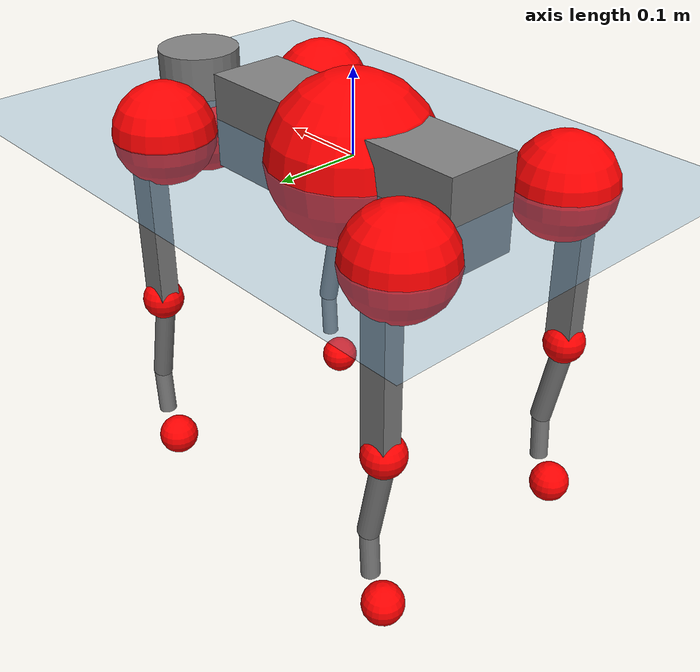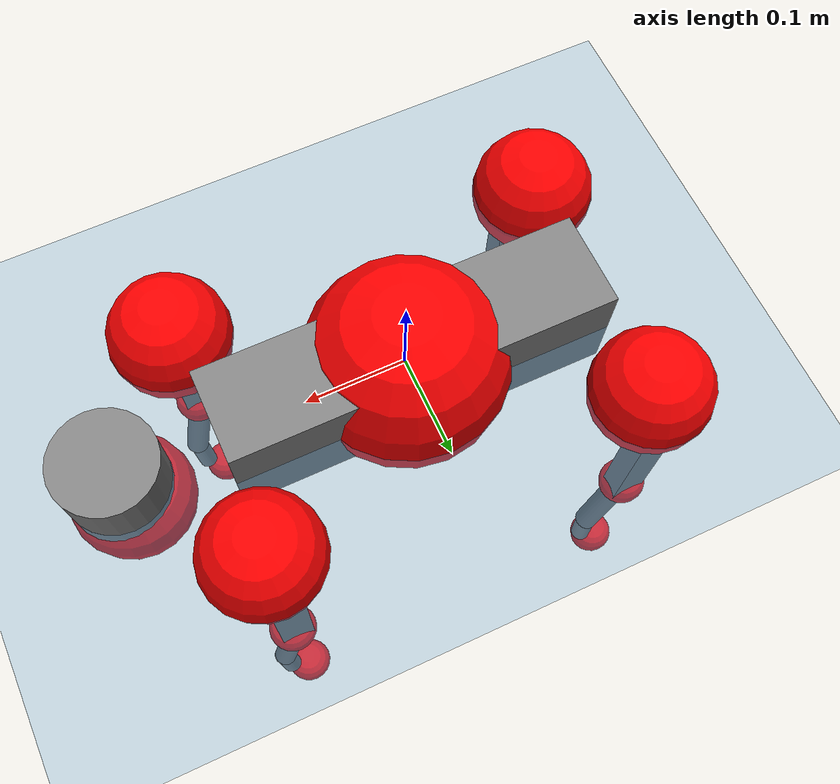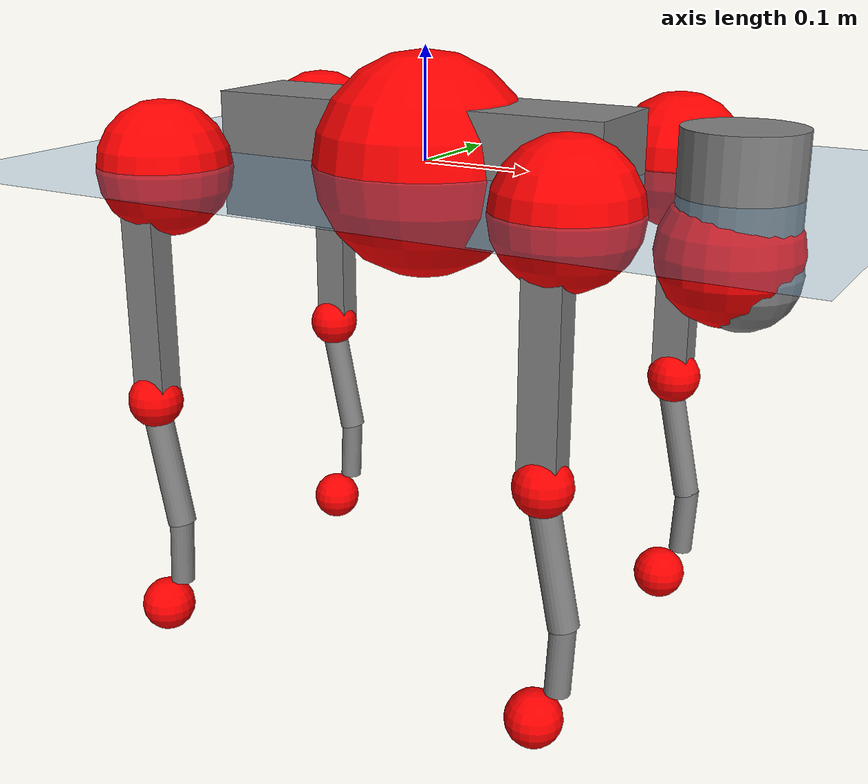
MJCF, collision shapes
<mujoco model="go2">
  <compiler angle="radian" assetdir="assets" balanceinertia="true" inertiafromgeom="false"/>

  <option timestep="0.005" density="1.2" viscosity="2e-05"/>

  <size nkey="1"/>

  <visual>
    <quality shadowsize="8192"/>
    <map shadowclip="0.5"/>
  </visual>

  <default>
    <default class="/">
      <geom contype="0" conaffinity="0" group="1" solref="-1000 -80"/>
      <site size="0.01 0.005 0.005" group="5"/>
      <general forcelimited="true" biastype="affine" gainprm="20" biasprm="0 -20 -0.5"/>
      <default class="go2">
        <joint armature="0.01" damping="0.01" frictionloss="0.2"/>
        <geom condim="1" margin="0.001"/>
        <default class="visual">
          <geom type="mesh" group="2"/>
        </default>
        <default class="collision">
          <geom group="3"/>
          <default class="foot">
            <geom size="0.022 0 0" condim="6" priority="1" friction="0.8 0.02 0.01" solimp="0.015 1 0.022"/>
          </default>
        </default>
        <default class="reward_collision_sphere">
          <geom group="5" rgba="1 0 0 1"/>
        </default>
      </default>
    </default>
  </default>

  <asset>
    <texture type="skybox" colorspace="auto" name="//unnamed_texture_0" builtin="gradient" rgb1="0.95 0.95 0.95" rgb2="0.95 0.95 0.95" width="100" height="600"/>
    <texture type="2d" colorspace="auto" name="texplane" builtin="checker" rgb1="0.345 0.575 0.748" rgb2="0.345 0.575 0.748" markrgb="1 1 1" width="512" height="512"/>
    <material name="MatPlane" class="/" texture="texplane" texuniform="true" texrepeat="2 2" specular="0.9"/>
    <material name="metal" class="/" rgba="0.9 0.95 0.95 1"/>
    <material name="black" class="/" rgba="0 0 0 1"/>
    <material name="white" class="/"/>
    <material name="gray" class="/" rgba="0.671705 0.692426 0.77427 1"/>
    <mesh name="base_0" class="/" file="base_0.obj"/>
    <mesh name="base_1" class="/" file="base_1.obj"/>
    <mesh name="base_2" class="/" file="base_2.obj"/>
    <mesh name="base_3" class="/" file="base_3.obj"/>
    <mesh name="base_4" class="/" file="base_4.obj"/>
    <mesh name="hip_0" class="/" file="hip_0.obj"/>
    <mesh name="hip_1" class="/" file="hip_1.obj"/>
    <mesh name="thigh_0" class="/" file="thigh_0.obj"/>
    <mesh name="thigh_1" class="/" file="thigh_1.obj"/>
    <mesh name="thigh_mirror_0" class="/" file="thigh_mirror_0.obj"/>
    <mesh name="thigh_mirror_1" class="/" file="thigh_mirror_1.obj"/>
    <mesh name="calf_0" class="/" file="calf_0.obj"/>
    <mesh name="calf_1" class="/" file="calf_1.obj"/>
    <mesh name="calf_mirror_0" class="/" file="calf_mirror_0.obj"/>
    <mesh name="calf_mirror_1" class="/" file="calf_mirror_1.obj"/>
    <mesh name="foot" class="/" file="foot.obj"/>
  </asset>

  <worldbody>
    <geom name="floor" class="/" size="100 100 0.125" type="plane" group="0" material="MatPlane"/>
    <light name="toplight_shadow" class="/" pos="0 0 5" dir="0.0990148 0.0990148 -0.990148" type="directional" ambient="0.04 0.04 0.04" diffuse="0.55 0.55 0.55" specular="0.12 0.12 0.12"/>
    <light name="toplight_fill" class="/" pos="0 0 5" dir="0.0990148 0.0990148 -0.990148" type="directional" castshadow="false" ambient="0.04 0.04 0.04" diffuse="0.3 0.3 0.3" specular="0.08 0.08 0.08"/>
    <body name="trunk" childclass="go2" pos="-0.00104831 -9.4869e-06 -0.00282745" quat="1 -4.96105e-05 0.000449653 0.000179205">
      <inertial pos="0.0182485 -0.0023873 -0.00318792" quat="0.00200641 0.716005 0.0045895 0.698077" mass="7.02597" diaginertia="0.112796 0.105211 0.0244771"/>
      <joint name="//unnamed_joint_0" type="free" armature="0" damping="0" frictionloss="0"/>
      <geom name="//unnamed_geom_1" class="visual" material="black" mesh="base_0"/>
      <geom name="//unnamed_geom_2" class="visual" material="black" mesh="base_1"/>
      <geom name="//unnamed_geom_3" class="visual" material="black" mesh="base_2"/>
      <geom name="//unnamed_geom_4" class="visual" material="white" mesh="base_3"/>
      <geom name="//unnamed_geom_5" class="visual" material="gray" mesh="base_4"/>
      <geom name="trunk_1" class="collision" size="0.188064 0.0467412 0.0569892" type="box"/>
      <geom name="trunk_2" class="collision" size="0.0499906 0.0449915" pos="0.28472 0 0.00991812" type="cylinder"/>
      <geom name="trunk_3" class="collision" size="0.0469911" pos="0.292712 0 -0.0595087"/>
      <geom name="//unnamed_geom_9" class="reward_collision_sphere" size="0.0999811"/>
      <geom name="//unnamed_geom_10" class="reward_collision_sphere" size="0.0599887" pos="0.279725 0 -0.0446315"/>
      <site name="imu" pos="-0.031418 0.00379585 0.0530205" size="0.00999811"/>
      <camera name="track" pos="0 -2.01721 0" quat="0.707107 0.707107 0 0" mode="trackcom"/>
      <camera name="ego_camera" pos="0.311694 0 0.0446315" quat="-0.5 -0.5 0.5 0.5"/>
      <body name="FL_hip" pos="0.191915 0.0462593 0.00338263" quat="0.999999 0.000826945 -0.000721712 0.000345327">
        <inertial pos="-0.00329835 -4.72564e-05 0.000936852" quat="0.503093 0.495274 0.512579 0.488736" mass="0.66602" diaginertia="0.000866631 0.000624747 0.000472096"/>
        <joint name="FL_hip_joint" pos="0 0 0" axis="0.999927 -0.0117738 -0.00277816" range="-1.02617 1.10421" armature="0.0108342" damping="0.0114182" frictionloss="0.203182"/>
        <geom name="//unnamed_geom_11" class="visual" material="metal" mesh="hip_0"/>
        <geom name="//unnamed_geom_12" class="visual" material="gray" mesh="hip_1"/>
        <geom name="//unnamed_geom_13" class="collision" size="0.0459913 0.0199962" pos="0 0.0806883 0" quat="0.707107 0.707107 0 0" type="cylinder"/>
        <geom name="//unnamed_geom_14" class="reward_collision_sphere" size="0.0599887" pos="0 0.0706022 0"/>
        <body name="FL_thigh" pos="-0.00167519 0.0969289 0.000902534" quat="1 0.000147617 0.000146967 0.000258394">
          <inertial pos="-0.00172652 -0.0224994 -0.030352" quat="0.830442 0.0807306 -0.0194326 0.550882" mass="1.17715" diaginertia="0.00570353 0.00602142 0.000836768"/>
          <joint name="FL_thigh_joint" pos="0 0 0" axis="0.00238732 0.999997 -0.000311265" stiffness="0.00203608" range="-1.58048 3.50006" armature="0.00978637" damping="0.00311085" frictionloss="0.177971"/>
          <geom name="//unnamed_geom_15" class="visual" material="metal" mesh="thigh_0"/>
          <geom name="//unnamed_geom_16" class="visual" material="gray" mesh="thigh_1"/>
          <geom name="//unnamed_geom_17" class="collision" size="0.10648 0.0122477 0.0169968" pos="0 0 -0.105628" quat="0.707107 0 0.707107 0" type="box"/>
          <body name="FL_calf" pos="0.00249937 -0.00192564 -0.212748" quat="0.999999 0.000988076 0.000975153 0.000214015">
            <inertial pos="0.00583957 -0.000979879 -0.140545" quat="0.712173 0.000570206 -0.0023905 0.702" mass="0.235134" diaginertia="0.00143703 0.00152168 4.92075e-05"/>
            <joint name="FL_calf_joint" pos="0 0 0" axis="0.0157921 0.999673 -0.0201084" range="-2.78137 -0.798791" armature="0.0112703" damping="0" frictionloss="0.228379"/>
            <geom name="//unnamed_geom_18" class="visual" material="gray" mesh="calf_0"/>
            <geom name="//unnamed_geom_19" class="visual" material="black" mesh="calf_1"/>
            <geom name="FL_calf0" class="collision" size="0.0119977 0.0599887" pos="0.00799215 0 -0.0595087" quat="0.994493 0 -0.104807 0" type="cylinder"/>
            <geom name="//unnamed_geom_21" class="collision" size="0.0109979 0.0324939" pos="0.0199804 0 -0.146788" quat="0.999688 0 0.0249974 0" type="cylinder"/>
            <geom name="//unnamed_geom_22" class="visual" pos="0 0 -0.211256" quat="1 0 0 0" material="black" mesh="foot"/>
            <geom name="FL_foot" class="foot" size="0.0157125" pos="-0.00199804 0 -0.211256"/>
            <geom name="//unnamed_geom_24" class="reward_collision_sphere" size="0.0249953"/>
            <geom name="//unnamed_geom_25" class="reward_collision_sphere" size="0.0249953" pos="-0.00199804 0 -0.211256"/>
            <site name="FL_foot" class="foot" pos="-0.00199804 0 -0.211256" size="0.00999811"/>
          </body>
        </body>
      </body>
      <body name="FR_hip" pos="0.190923 -0.0470992 -0.000369088" quat="1 4.40667e-05 -0.000123099 -2.00229e-05">
        <inertial pos="-0.00303396 -0.000891102 -0.00141415" quat="0.49859 0.505644 0.49839 0.497332" mass="0.696831" diaginertia="0.00088523 0.000666015 0.000474975"/>
        <joint name="FR_hip_joint" pos="0 0 0" axis="0.999956 0.000583384 -0.00940584" range="-1.09098 1.03601" armature="0.00892058" damping="0.00292215" frictionloss="0.178412"/>
        <geom name="//unnamed_geom_26" class="visual" pos="0 1.46283e-10 6.27437e-09" quat="4.63268e-05 1 0 0" material="metal" mesh="hip_0"/>
        <geom name="//unnamed_geom_27" class="visual" pos="0 2.37142e-10 -1.55189e-08" quat="4.63268e-05 1 0 0" material="gray" mesh="hip_1"/>
        <geom name="//unnamed_geom_28" class="collision" size="0.0459913 0.0199962" pos="0 -0.0806883 0" quat="0.707107 0.707107 0 0" type="cylinder"/>
        <geom name="//unnamed_geom_29" class="reward_collision_sphere" size="0.0599887" pos="0 -0.0706022 0"/>
        <body name="FR_thigh" pos="-0.00197307 -0.0943102 -0.00200766" quat="1 5.74501e-05 2.06526e-05 2.19964e-05">
          <inertial pos="-0.00341503 0.0219112 -0.0312691" quat="0.54756 -0.0300551 0.0886946 0.831509" mass="1.08815" diaginertia="0.00564537 0.00609886 0.000838999"/>
          <joint name="FR_thigh_joint" pos="0 0 0" axis="0.00910446 -0.999953 0.00327873" range="-3.46563 1.62563" armature="0.0102278" damping="0" frictionloss="0.20574"/>
          <geom name="//unnamed_geom_30" class="visual" material="metal" mesh="thigh_mirror_0"/>
          <geom name="//unnamed_geom_31" class="visual" material="gray" mesh="thigh_mirror_1"/>
          <geom name="//unnamed_geom_32" class="collision" size="0.10648 0.0122477 0.0169968" pos="0 0 -0.105628" quat="0.707107 0 0.707107 0" type="box"/>
          <body name="FR_calf" pos="0.00193831 -0.00160466 -0.208976" quat="1 0.000374726 5.85288e-05 9.89196e-05">
            <inertial pos="0.00568758 0.0015807 -0.138439" quat="0.702686 -0.0173623 -0.00330188 0.711281" mass="0.243889" diaginertia="0.00146271 0.0014827 5.05966e-05"/>
            <joint name="FR_calf_joint" pos="0 0 0" axis="-0.00891448 -0.999958 -0.00234149" range="0.781402 2.77863" armature="0.00936288" damping="0.00602997" frictionloss="0.184996"/>
            <geom name="//unnamed_geom_33" class="visual" material="gray" mesh="calf_mirror_0"/>
            <geom name="//unnamed_geom_34" class="visual" material="black" mesh="calf_mirror_1"/>
            <geom name="FR_calf0" class="collision" size="0.0129975 0.0599887" pos="0.00999018 0 -0.0595087" quat="0.995004 0 -0.0998334 0" type="cylinder"/>
            <geom name="//unnamed_geom_36" class="collision" size="0.0109979 0.0324939" pos="0.0199804 0 -0.146788" quat="0.999688 0 0.0249974 0" type="cylinder"/>
            <geom name="//unnamed_geom_37" class="visual" pos="0 0 -0.211256" quat="1 0 0 0" material="black" mesh="foot"/>
            <geom name="FR_foot" class="foot" size="0.0220774" pos="-0.00199804 0 -0.211256"/>
            <geom name="//unnamed_geom_39" class="reward_collision_sphere" size="0.0249953"/>
            <geom name="//unnamed_geom_40" class="reward_collision_sphere" size="0.0249953" pos="-0.00199804 0 -0.211256"/>
            <site name="FR_foot" class="foot" pos="-0.00199804 0 -0.211256" size="0.00999811"/>
          </body>
        </body>
      </body>
      <body name="RL_hip" pos="-0.194459 0.0493466 -0.000520648" quat="1 -0.000538165 0.000488262 -1.8513e-06">
        <inertial pos="0.00758207 0.0041464 -0.00128093" quat="0.508464 0.507809 0.493266 0.490188" mass="0.679889" diaginertia="0.000836891 0.00061427 0.000434471"/>
        <joint name="RL_hip_joint" pos="0 0 0" axis="-1 0.000742924 4.58644e-05" range="-1.01297 1.03452" armature="0.00884254" damping="0" frictionloss="0.2065"/>
        <geom name="//unnamed_geom_41" class="visual" pos="-6.27799e-11 0 -1.23063e-08" quat="4.63268e-05 0 1 0" material="metal" mesh="hip_0"/>
        <geom name="//unnamed_geom_42" class="visual" pos="-1.01774e-10 0 -1.09139e-08" quat="4.63268e-05 0 1 0" material="gray" mesh="hip_1"/>
        <geom name="//unnamed_geom_43" class="collision" size="0.0459913 0.0199962" pos="0 0.0806883 0" quat="0.707107 0.707107 0 0" type="cylinder"/>
        <geom name="//unnamed_geom_44" class="reward_collision_sphere" size="0.0599887" pos="0 0.0706022 0"/>
        <body name="RL_thigh" pos="-0.00281382 0.0949927 -0.00131771" quat="1 -5.09993e-07 4.45264e-07 2.01315e-07">
          <inertial pos="-0.00389346 -0.0196922 -0.0317992" quat="0.831272 0.0845487 -0.024134 0.548867" mass="1.15163" diaginertia="0.00595606 0.00589762 0.000857164"/>
          <joint name="RL_thigh_joint" pos="0 0 0" axis="0.00111389 0.999985 -0.00532085" stiffness="0.0140371" range="-0.521882 4.55906" armature="0.00871449" damping="0" frictionloss="0.216355"/>
          <geom name="//unnamed_geom_45" class="visual" material="metal" mesh="thigh_0"/>
          <geom name="//unnamed_geom_46" class="visual" material="gray" mesh="thigh_1"/>
          <geom name="//unnamed_geom_47" class="collision" size="0.10648 0.0122477 0.0169968" pos="0 0 -0.105628" quat="0.707107 0 0.707107 0" type="box"/>
          <body name="RL_calf" pos="-0.00267376 -0.00268901 -0.213428" quat="1 -0.000259795 -0.000427549 0.000654253">
            <inertial pos="0.00606789 -0.000844824 -0.139273" quat="0.710987 0.00101158 -0.00122417 0.703203" mass="0.242484" diaginertia="0.00147422 0.00152035 5.06168e-05"/>
            <joint name="RL_calf_joint" pos="0 0 0" axis="0.00439743 0.999978 0.00502431" range="-2.72868 -0.841635" armature="0.00875796" damping="0.00521456" frictionloss="0.228534"/>
            <geom name="//unnamed_geom_48" class="visual" material="gray" mesh="calf_0"/>
            <geom name="//unnamed_geom_49" class="visual" material="black" mesh="calf_1"/>
            <geom name="RL_calf0" class="collision" size="0.0129975 0.0599887" pos="0.00999018 0 -0.0595087" quat="0.995004 0 -0.0998334 0" type="cylinder"/>
            <geom name="//unnamed_geom_51" class="collision" size="0.0109979 0.0324939" pos="0.0199804 0 -0.146788" quat="0.999688 0 0.0249974 0" type="cylinder"/>
            <geom name="//unnamed_geom_52" class="visual" pos="0 0 -0.211256" quat="1 0 0 0" material="black" mesh="foot"/>
            <geom name="RL_foot" class="foot" size="0.0182777" pos="-0.00199804 0 -0.211256"/>
            <geom name="//unnamed_geom_54" class="reward_collision_sphere" size="0.0249953"/>
            <geom name="//unnamed_geom_55" class="reward_collision_sphere" size="0.0249953" pos="-0.00199804 0 -0.211256"/>
            <site name="RL_foot" class="foot" pos="-0.00199804 0 -0.211256" size="0.00999811"/>
          </body>
        </body>
      </body>
      <body name="RR_hip" pos="-0.194566 -0.0494007 -0.00246456" quat="0.999999 -0.0013269 -0.000125637 -0.000164274">
        <inertial pos="0.00350773 -0.00201154 0.00222241" quat="0.49798 0.496813 0.496313 0.508788" mass="0.656963" diaginertia="0.000857517 0.000601713 0.000437857"/>
        <joint name="RR_hip_joint" pos="0 0 0" axis="-0.999998 0.000109674 -0.00204183" range="-1.09443 1.07121" armature="0.0097548" damping="0.000963722" frictionloss="0.204508"/>
        <geom name="//unnamed_geom_56" class="visual" pos="6.31116e-11 1.46283e-10 -1.85807e-08" quat="2.14617e-09 4.63268e-05 4.63268e-05 -1" material="metal" mesh="hip_0"/>
        <geom name="//unnamed_geom_57" class="visual" pos="1.00953e-10 2.37142e-10 4.60498e-09" quat="2.14617e-09 4.63268e-05 4.63268e-05 -1" material="gray" mesh="hip_1"/>
        <geom name="//unnamed_geom_58" class="collision" size="0.0459913 0.0199962" pos="0 -0.0806883 0" quat="0.707107 0.707107 0 0" type="cylinder"/>
        <geom name="//unnamed_geom_59" class="reward_collision_sphere" size="0.0599887" pos="0 -0.0706022 0"/>
        <body name="RR_thigh" pos="-0.00136556 -0.0991995 0.00108441" quat="1 0.000415005 0.000192815 -0.000331594">
          <inertial pos="-0.000827883 0.0224822 -0.0327652" quat="0.550966 -0.0198998 0.0845667 0.829993" mass="1.11878" diaginertia="0.00568294 0.00599032 0.000835934"/>
          <joint name="RR_thigh_joint" pos="0 0 0" axis="-0.0142656 -0.999865 -0.00819502" stiffness="0.000880727" range="-4.5517 0.531143" armature="0.00899953" damping="0.00346244" frictionloss="0.205249"/>
          <geom name="//unnamed_geom_60" class="visual" material="metal" mesh="thigh_mirror_0"/>
          <geom name="//unnamed_geom_61" class="visual" material="gray" mesh="thigh_mirror_1"/>
          <geom name="//unnamed_geom_62" class="collision" size="0.10648 0.0122477 0.0169968" pos="0 0 -0.105628" quat="0.707107 0 0.707107 0" type="box"/>
          <body name="RR_calf" pos="-0.00162664 -0.00119545 -0.210775" quat="0.999999 -0.00045619 0.000725816 -0.000804531">
            <inertial pos="0.0041146 0.000669236 -0.141201" quat="0.711511 -0.0030087 0.00585065 0.702644" mass="0.235306" diaginertia="0.00141384 0.00155515 4.99326e-05"/>
            <joint name="RR_calf_joint" pos="0 0 0" axis="0.00111319 -0.99999 0.00440411" stiffness="0.0107054" range="0.841989 2.70394" armature="0.00928475" damping="0.0220389" frictionloss="0.199828"/>
            <geom name="//unnamed_geom_63" class="visual" material="gray" mesh="calf_mirror_0"/>
            <geom name="//unnamed_geom_64" class="visual" material="black" mesh="calf_mirror_1"/>
            <geom name="RR_calf0" class="collision" size="0.0129975 0.0599887" pos="0.00999018 0 -0.0595087" quat="0.995004 0 -0.0998334 0" type="cylinder"/>
            <geom name="//unnamed_geom_66" class="collision" size="0.0109979 0.0324939" pos="0.0199804 0 -0.146788" quat="0.999688 0 0.0249974 0" type="cylinder"/>
            <geom name="//unnamed_geom_67" class="visual" pos="0 0 -0.211256" quat="1 0 0 0" material="black" mesh="foot"/>
            <geom name="RR_foot" class="foot" size="0.0197077" pos="-0.00199804 0 -0.211256"/>
            <geom name="//unnamed_geom_69" class="reward_collision_sphere" size="0.0249953"/>
            <geom name="//unnamed_geom_70" class="reward_collision_sphere" size="0.0249953" pos="-0.00199804 0 -0.211256"/>
            <site name="RR_foot" class="foot" pos="-0.00199804 0 -0.211256" size="0.00999811"/>
          </body>
        </body>
      </body>
    </body>
  </worldbody>

  <contact>
    <pair class="/" geom1="floor" geom2="FL_foot" name="//unnamed_contact_0"/>
    <pair class="/" geom1="floor" geom2="FR_foot" name="//unnamed_contact_1"/>
    <pair class="/" geom1="floor" geom2="RL_foot" name="//unnamed_contact_2"/>
    <pair class="/" geom1="floor" geom2="RR_foot" name="//unnamed_contact_3"/>
  </contact>

  <actuator>
    <general name="FL_hip" class="/" joint="FL_hip_joint" forcerange="-24.1152 24.1152" gainprm="20.2059" biasprm="0 -20.2059 -0.488787"/>
    <general name="FL_thigh" class="/" joint="FL_thigh_joint" forcerange="-21.2287 21.2287" gainprm="20.2059" biasprm="0 -20.2059 -0.488787"/>
    <general name="FL_calf" class="/" joint="FL_calf_joint" forcerange="-44.3264 44.3264" gainprm="20.2059" biasprm="0 -20.2059 -0.488787"/>
    <general name="FR_hip" class="/" joint="FR_hip_joint" forcerange="-21.1401 21.1401" gainprm="20.2059" biasprm="0 -20.2059 -0.488787"/>
    <general name="FR_thigh" class="/" joint="FR_thigh_joint" forcerange="-25.7504 25.7504" gainprm="20.2059" biasprm="0 -20.2059 -0.488787"/>
    <general name="FR_calf" class="/" joint="FR_calf_joint" forcerange="-41.2813 41.2813" gainprm="20.2059" biasprm="0 -20.2059 -0.488787"/>
    <general name="RL_hip" class="/" joint="RL_hip_joint" forcerange="-23.6127 23.6127" gainprm="20.2059" biasprm="0 -20.2059 -0.488787"/>
    <general name="RL_thigh" class="/" joint="RL_thigh_joint" forcerange="-21.8195 21.8195" gainprm="20.2059" biasprm="0 -20.2059 -0.488787"/>
    <general name="RL_calf" class="/" joint="RL_calf_joint" forcerange="-44.7821 44.7821" gainprm="20.2059" biasprm="0 -20.2059 -0.488787"/>
    <general name="RR_hip" class="/" joint="RR_hip_joint" forcerange="-22.351 22.351" gainprm="20.2059" biasprm="0 -20.2059 -0.488787"/>
    <general name="RR_thigh" class="/" joint="RR_thigh_joint" forcerange="-22.2984 22.2984" gainprm="20.2059" biasprm="0 -20.2059 -0.488787"/>
    <general name="RR_calf" class="/" joint="RR_calf_joint" forcerange="-49.5083 49.5083" gainprm="20.2059" biasprm="0 -20.2059 -0.488787"/>
  </actuator>

  <sensor>
    <gyro site="imu" name="imu_angular_velocity"/>
    <velocimeter site="imu" name="imu_linear_velocity"/>
    <framelinvel objtype="site" objname="FL_foot" name="FL_foot_global_linear_velocity"/>
    <framelinvel objtype="site" objname="FR_foot" name="FR_foot_global_linear_velocity"/>
    <framelinvel objtype="site" objname="RL_foot" name="RL_foot_global_linear_velocity"/>
    <framelinvel objtype="site" objname="RR_foot" name="RR_foot_global_linear_velocity"/>
  </sensor>

  <keyframe>
    <key name="home" qpos="0 0 0.325 1 0 0 0 0.1 0.8 -1.5 -0.1 -0.8 1.5 -0.1 0.8 -1.5 0.1 -0.8 1.5"/>
  </keyframe>
</mujoco>
